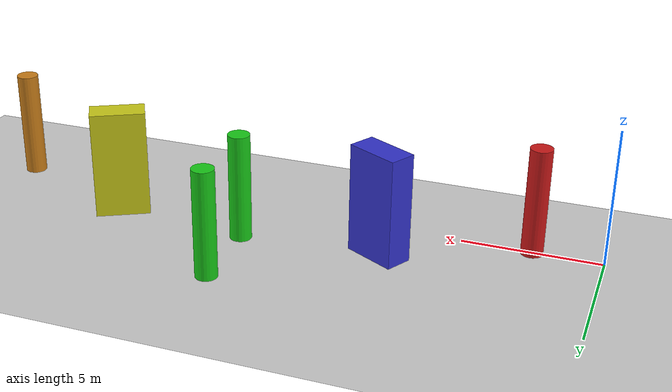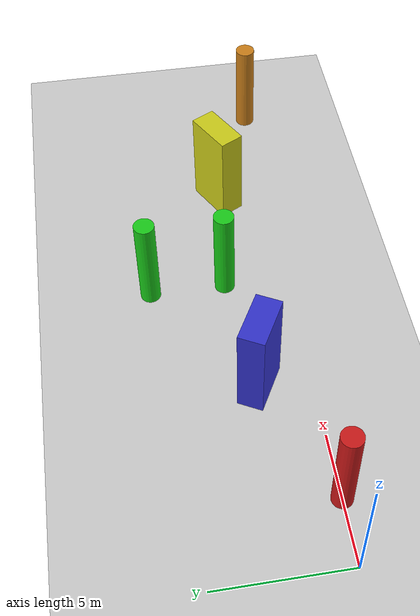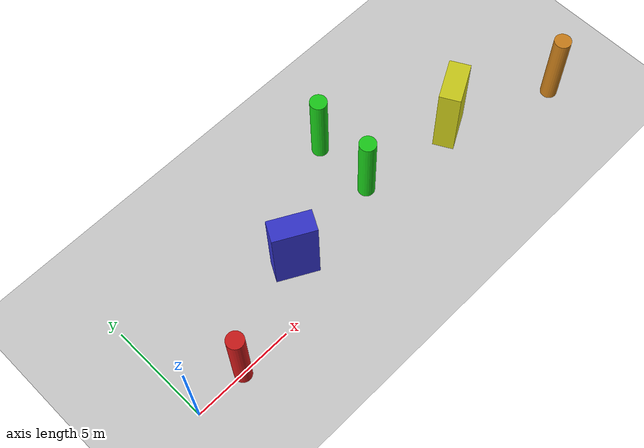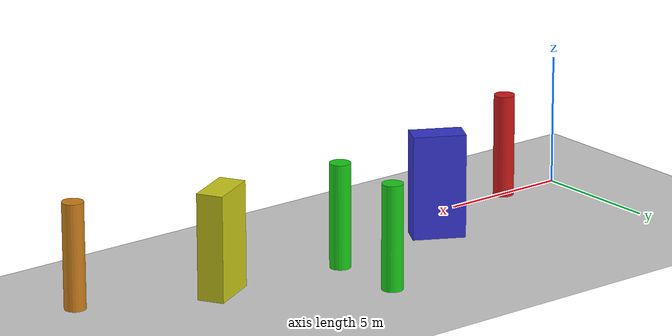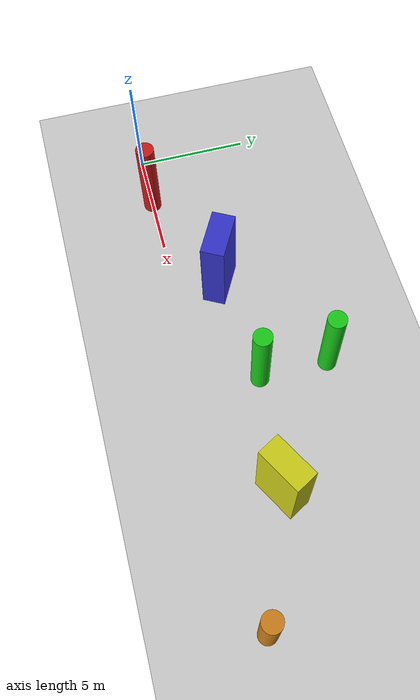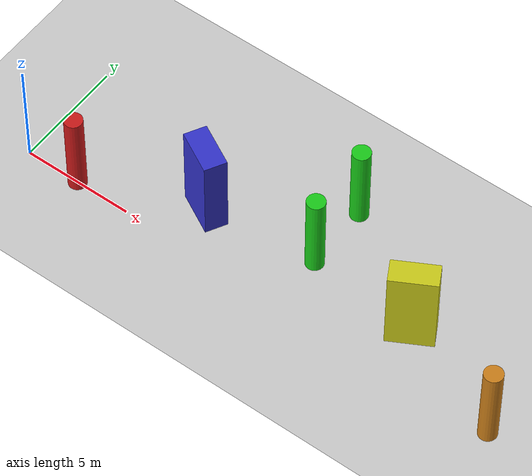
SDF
<sdf version="1.6">
 <world name="practice_world">
  <include><uri>model://sun</uri></include>
  <include><uri>model://ground_plane</uri></include>
  <physics name="default_physics" default="0" type="ode">
   <gravity>0 0 -9.8066</gravity>
   <ode>
    <solver><type>quick</type><iters>10</iters><sor>1.3</sor></solver>
    <constraints>
     <cfm>0</cfm>
     <erp>0.2</erp>
     <contact_max_correcting_vel>100</contact_max_correcting_vel>
     <contact_surface_layer>0.001</contact_surface_layer>
    </constraints>
   </ode>
   <max_step_size>0.004</max_step_size>
   <real_time_factor>1</real_time_factor>
   <real_time_update_rate>250</real_time_update_rate>
  </physics>
  <model name="obstacle_cylinder_1">
   <static>true</static>
   <pose>2.5 0.0 2.0 0 0 0</pose>
   <link name="link">
    <collision name="collision">
     <geometry><cylinder><radius>0.4</radius><length>4.0</length></cylinder></geometry>
    </collision>
    <visual name="visual">
     <geometry><cylinder><radius>0.4</radius><length>4.0</length></cylinder></geometry>
     <material><ambient>0.8 0.1 0.1 1</ambient><diffuse>0.8 0.1 0.1 1</diffuse></material>
    </visual>
   </link>
  </model>
  <model name="obstacle_box_1">
   <static>true</static>
   <pose>7.5 2.0 2.0 0 0 -0.5</pose>
   <link name="link">
    <collision name="collision"><geometry><box><size>2.0 1.0 4.0</size></box></geometry></collision>
    <visual name="visual">
     <geometry><box><size>2.0 1.0 4.0</size></box></geometry>
     <material><ambient>0.2 0.2 0.8 1</ambient><diffuse>0.2 0.2 0.8 1</diffuse></material>
    </visual>
   </link>
  </model>
  <model name="obstacle_cylinder_2">
   <static>true</static>
   <pose>12.5 2.5 2.0 0 0 0</pose>
   <link name="link">
    <collision name="collision">
     <geometry><cylinder><radius>0.4</radius><length>4.0</length></cylinder></geometry>
    </collision>
    <visual name="visual">
     <geometry><cylinder><radius>0.4</radius><length>4.0</length></cylinder></geometry>
     <material><ambient>0.1 0.8 0.1 1</ambient><diffuse>0.1 0.8 0.1 1</diffuse></material>
    </visual>
   </link>
  </model>
  <model name="obstacle_cylinder_3">
   <static>true</static>
   <pose>12.5 5.5 2.0 0 0 0</pose>
   <link name="link">
    <collision name="collision">
     <geometry><cylinder><radius>0.4</radius><length>4.0</length></cylinder></geometry>
    </collision>
    <visual name="visual">
     <geometry><cylinder><radius>0.4</radius><length>4.0</length></cylinder></geometry>
     <material><ambient>0.1 0.8 0.1 1</ambient><diffuse>0.1 0.8 0.1 1</diffuse></material>
    </visual>
   </link>
  </model>
  <model name="obstacle_box_2">
   <static>true</static>
   <pose>17.5 2.0 2.0 0 0 0.5</pose>
   <link name="link">
    <collision name="collision"><geometry><box><size>2.0 1.0 4.0</size></box></geometry></collision>
    <visual name="visual">
     <geometry><box><size>2.0 1.0 4.0</size></box></geometry>
     <material><ambient>0.8 0.8 0.1 1</ambient><diffuse>0.8 0.8 0.1 1</diffuse></material>
    </visual>
   </link>
  </model>
  <model name="obstacle_cylinder_4">
   <static>true</static>
   <pose>22.5 0.0 2.0 0 0 0</pose>
   <link name="link">
    <collision name="collision">
     <geometry><cylinder><radius>0.4</radius><length>4.0</length></cylinder></geometry>
    </collision>
    <visual name="visual">
     <geometry><cylinder><radius>0.4</radius><length>4.0</length></cylinder></geometry>
     <material><ambient>0.8 0.5 0.1 1</ambient><diffuse>0.8 0.5 0.1 1</diffuse></material>
    </visual>
   </link>
  </model>
 </world>
</sdf>
